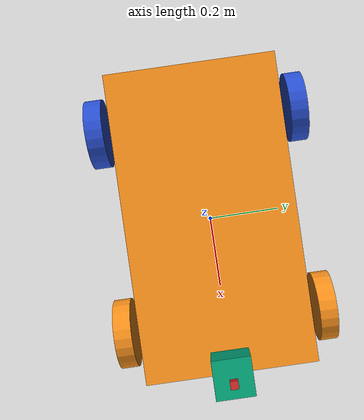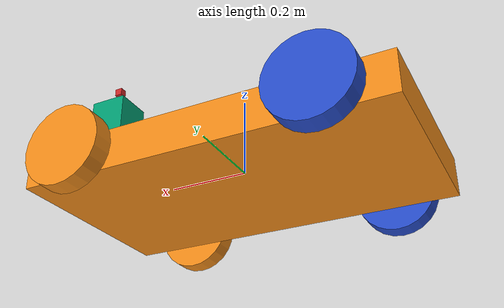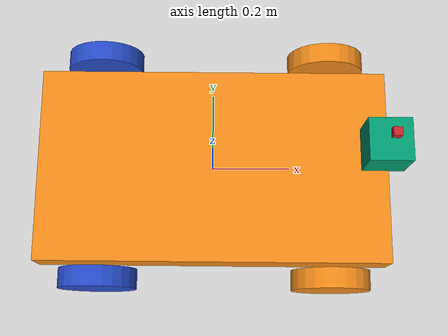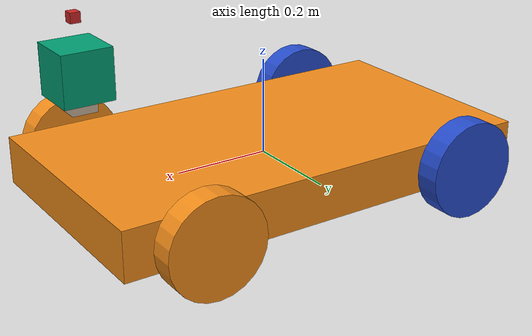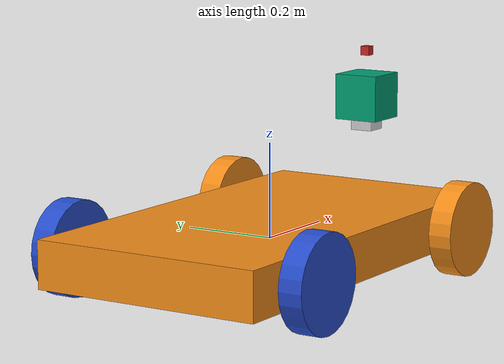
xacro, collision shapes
<?xml version='1.0'?>

<robot name="myrobot" xmlns:xacro="http://www.ros.org/wiki/xacro">

  <xacro:property name="cameraSize" value="0.05"/>
  <xacro:property name="cameraMass" value="0.1"/>

  <xacro:include filename="$(find mybot_description)/urdf/mybot.gazebo" />
  <xacro:include filename="$(find mybot_description)/urdf/materials.xacro" />
  <xacro:include filename="$(find mybot_description)/urdf/macros.xacro" />

  <link name='base_link'>
    <pose>0 0 0.1 0 0 0</pose>

    <inertial>
      <mass value="15.0"/>
      <origin xyz="0 0 0" rpy=" 0 0 0"/>
      <inertia
          ixx="0.1" ixy="0" ixz="0"
          iyy="0.1" iyz="0"
          izz="0.1"
      />
    </inertial>

    <collision name='collision'>
      <geometry>
        <box size=".9 .5 .1"/>
      </geometry>
    </collision>

    <visual name='chassis_visual'>
      <origin xyz="0 0 0.1" rpy=" 0 0 0"/>
      <geometry>
        <box size=".9 .5 .1"/>
	<!--mesh filename="package://mybot_description/meshes/base_link_Cartaman.dae"/-->
      </geometry>
    </visual>

     <!--origin xyz="0.1 0.13 0.1" rpy="0 1.5707 1.5707"/-->
    <collision name="left_wheel_collision">
      <origin xyz=".3 0.29 0" rpy="0 1.5707 1.5707"/>
      <geometry>
        <cylinder radius="0.1" length="0.05"/>
      </geometry>
    </collision>
    <visual name="left_wheel_visual_1">
      <origin xyz=".3 0.29 0" rpy="0 1.5707 1.5707"/>
      <geometry>
        <cylinder radius="0.1" length="0.05"/>
      </geometry>
    </visual>
    <inertial>
      <origin xyz="0 0 0" rpy="0 0 0"/>
      <mass value="5"/>
      <inertia
        ixx=".1" ixy="0.0" ixz="0.0"
        iyy=".1" iyz="0.0"
        izz=".1"/>
    </inertial>

      <!--origin xyz="0.1 -0.13 0.1" rpy="0 1.5707 1.5707"/-->
    <collision name="right_wheel_collision">
      <origin xyz=".3 -0.29 0" rpy="0 1.5707 1.5707"/>
      <geometry>
        <cylinder radius="0.1" length="0.05"/>
      </geometry>
    </collision>
    <visual name="right_wheel_visual_1">
      <origin xyz=".3 -0.29 0" rpy="0 1.5707 1.5707"/>
      <geometry>
        <cylinder radius="0.1" length="0.05"/>

      </geometry>
    </visual>
    <inertial>
      <origin xyz="0 0 0" rpy="0 0 0"/>
      <mass value="5"/>
      <inertia
        ixx=".1" ixy="0.0" ixz="0.0"
        iyy=".1" iyz="0.0"
        izz=".1"/>
    </inertial>

  </link>
 <!-- base_link -->

<!-- oooooooooooooooooooooooooooooooooooooooooooooooooooooooooooooooooooooooooooooooooooooooooooooooooo /-->
<link name="imu_sensor_link">
        <collision>
            <origin xyz="0 0 0" rpy="0 0 0"/>
            <geometry>
                <box size="0.02 0.02 0.02"/>
            </geometry>
        </collision>
        <visual>
            <origin xyz="0 0 0" rpy="0 0 0"/>
            <geometry>
                <box size="0.02 0.02 0.02"/>
            </geometry>
            <material name="iRobot/Red"/>
        </visual>
        <inertial>
            <mass value="0.001" />
            <origin xyz="0 0 0" rpy="0 0 0"/>
            <inertia ixx="0.00000015" ixy="0" ixz="0" iyy="0.00000015" iyz="0" izz="0.00000015" />
        </inertial>
    </link>

 <joint type="fixed" name="imu_sensor_joint">
    <origin xyz=".4 0 .35" rpy="0 0 0"/>
    <!--origin xyz="0.1 -0.13 0" rpy="0 1.5707 1.5707"/-->
    <child link="imu_sensor_link"/>
    <parent link="base_link"/>
    <axis xyz="0 0 1" />
 </joint>

    <link name="base_imu_link" />
    <joint name="base_imu_joint" type="fixed">
      <origin xyz="0 0 0" rpy="0 -1.5707 0" />
      <parent link="imu_sensor_link" />
      <child link="base_imu_link" />
    </joint>

<!-- oooooooooooooooooooooooooooooooooooooooooooooooooooooooooooooooooooooooooooooooooooooooooooooooooo /-->

  <link name="left_wheel">
    <!--origin xyz="0.1 0.13 0.1" rpy="0 1.5707 1.5707"/-->
    <collision name="collision">
      <origin xyz="0 0 0" rpy="0 1.5707 1.5707"/>
      <geometry>
        <cylinder radius="0.1" length="0.05"/>
      </geometry>
    </collision>
    <visual name="left_wheel_visual">
      <origin xyz="0 0 0" rpy="0 1.5707 1.5707"/>
      <geometry>
        <cylinder radius="0.1" length="0.05"/>
	<!--mesh filename="package://mybot_description/meshes/Wheelhub_8inch.dae"/-->
      </geometry>
    </visual>
    <inertial>
      <origin xyz="0 0 0" rpy="0 0 0"/>
      <mass value="5"/>
      <inertia
        ixx=".1" ixy="0.0" ixz="0.0"
        iyy=".1" iyz="0.0"
        izz=".1"/>
    </inertial>
  </link>

  <link name="right_wheel">
    <!--origin xyz="0.1 -0.13 0.1" rpy="0 1.5707 1.5707"/-->
    <collision name="collision">
      <origin xyz="0 0 0" rpy="0 1.5707 1.5707"/>
      <geometry>
        <cylinder radius="0.1" length="0.05"/>
      </geometry>
    </collision>
    <visual name="right_wheel_visual">
      <origin xyz="0 0 0" rpy="0 1.5707 1.5707"/>
      <geometry>
        <cylinder radius="0.1" length="0.05"/>
      </geometry>
    </visual>
    <inertial>
      <origin xyz="0 0 0" rpy="0 0 0"/>
      <mass value="5"/>
      <inertia
        ixx=".1" ixy="0.0" ixz="0.0"
        iyy=".1" iyz="0.0"
        izz=".1"/>
    </inertial>
  </link>
  <joint type="continuous" name="left_wheel_hinge">
    <origin xyz="-.29 0.29 0" rpy="0 0 0"/>
    <!--origin xyz="0.1 0.13 0" rpy="0 1.5707 1.5707"/-->
    <child link="left_wheel"/>
    <parent link="base_link"/>
    <axis xyz="0 1 0" rpy="0 0 0"/>
    <limit effort="10000" velocity="1000"/>
    <joint_properties damping="1.0" friction="1.0"/>
  </joint>

  <joint type="continuous" name="right_wheel_hinge">
    <origin xyz="-.29 -0.29 0" rpy="0 0 0"/>
    <!--origin xyz="0.1 -0.13 0" rpy="0 1.5707 1.5707"/-->
    <child link="right_wheel"/>
    <parent link="base_link"/>
    <axis xyz="0 1 0" rpy="0 0 0"/>
    <limit effort="10000" velocity="1000"/>
    <joint_properties damping="1.0" friction="1.0"/>
  </joint>

<!-- oooooooooooooooooooooooooooooooooooooooooooooooooooooooooooooooooooooooooooooooooooooooooooooooooo /-->

<link name="zed_camera_center">
    <collision>
      <origin xyz="0 0 0" rpy="0 0 0"/>
      <geometry>
        <box size="${cameraSize} ${cameraSize} ${cameraSize}"/>
      </geometry>
    </collision>
        <visual>
            <origin xyz="0 0 0" rpy="0 0 0"/>
            <geometry>
                <mesh filename="package://zed_wrapper/urdf/ZED.stl" />
            </geometry>
            <material name="light_grey">
                <color rgba="0.8 0.8 0.8 0.8"/>
            </material>
        </visual>
    </link>

<!-- Left Camera -->

    <joint name="zed_left_camera_joint" type="fixed">
        <parent link="zed_camera_center"/>
        <child link="zed_left_camera_frame"/>
        <origin xyz="0 0.06 0" rpy="0 0 0" />
    </joint>

    <link name="zed_left_camera_frame" />

    <joint name="zed_left_camera_optical_joint" type="fixed">
        <origin xyz="0 0 0" rpy="-1.57079632679 0.0 -1.57079632679"/>
        <parent link="zed_left_camera_frame"/>
        <child link="zed_left_camera_optical_frame"/>
    </joint>

    <link name="zed_left_camera_optical_frame"/>

<!-- Right Camera -->

    <joint name="zed_right_camera_joint" type="fixed">
        <parent link="zed_camera_center"/>
        <child link="zed_right_camera_frame"/>
        <origin xyz="0 -0.06 0" rpy="0 0 0" />
    </joint>

    <link name="zed_right_camera_frame" />

    <joint name="zed_right_camera_optical_joint" type="fixed">
        <origin xyz="0 0 0" rpy="-1.57079632679 0.0 -1.57079632679"/>
        <parent link="zed_right_camera_frame"/>
        <child link="zed_right_camera_optical_frame"/>
    </joint>

    <link name="zed_right_camera_optical_frame"/>

 <joint name="camera_joint" type="fixed">
    <axis xyz="0 1 0" />
    <origin xyz=".4 0 .20" rpy="0 0 0"/>
    <parent link="base_link"/>
    <child link="zed_camera_center"/>
  </joint>

<!-- oooooooooooooooooooooooooooooooooooooooooooooooooooooooooooooooooooooooooooooooooooooooooooooooooo /-->
  <joint name="hokuyo_joint" type="fixed">
    <axis xyz="0 1 0" />
    <origin xyz=".4 0 .25" rpy="0 0 0"/>
    <parent link="base_link"/>
    <child link="hokuyo"/>
  </joint>

  <!-- Hokuyo Laser -->
  <link name="hokuyo">
    <collision>
      <origin xyz="0 0 0" rpy="0 0 0"/>
      <geometry>
    <box size="0.1 0.1 0.1"/>
      </geometry>
    </collision>

    <visual>
      <origin xyz="0 0 0" rpy="0 0 0"/>
      <geometry>
        <mesh filename="package://mybot_description/meshes/hokuyo.dae"/>
      </geometry>
    </visual>

    <inertial>
      <mass value="1e-5" />
      <origin xyz="0 0 0" rpy="0 0 0"/>
      <inertia ixx="1e-6" ixy="0" ixz="0" iyy="1e-6" iyz="0" izz="1e-6" />
    </inertial>
  </link>

</robot>
